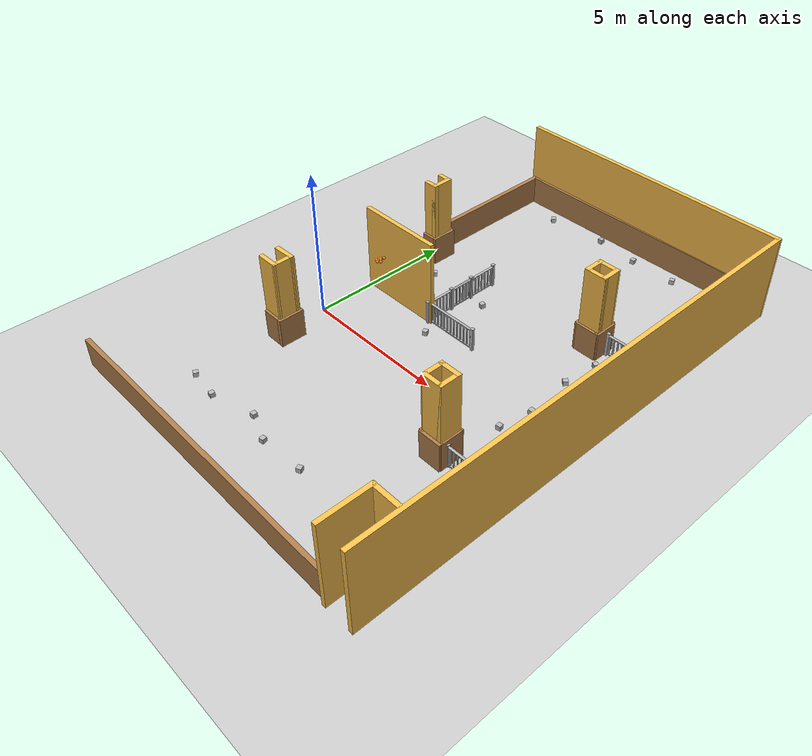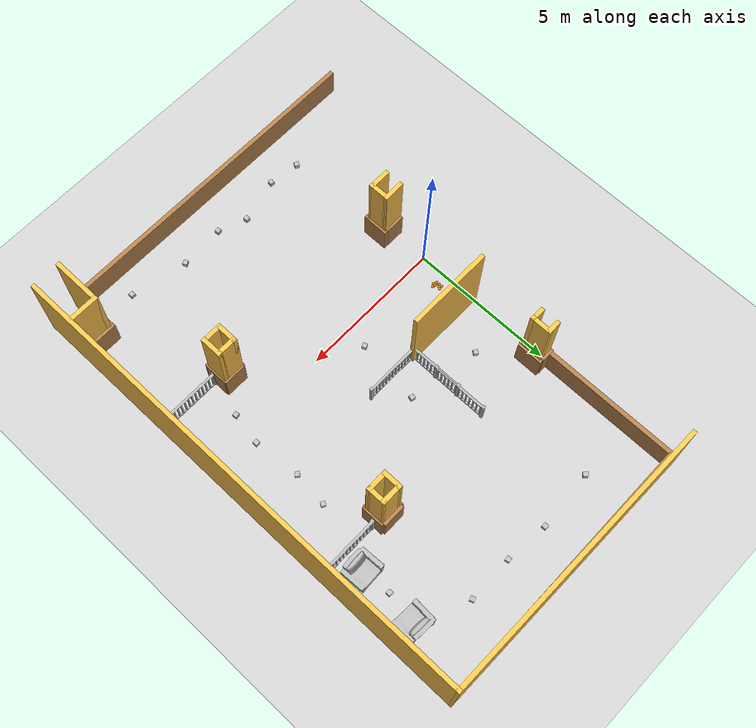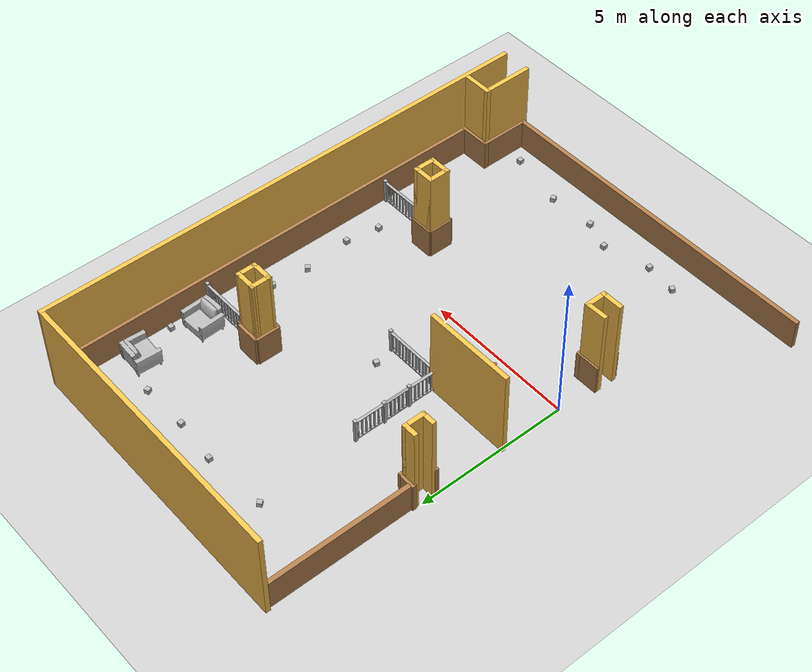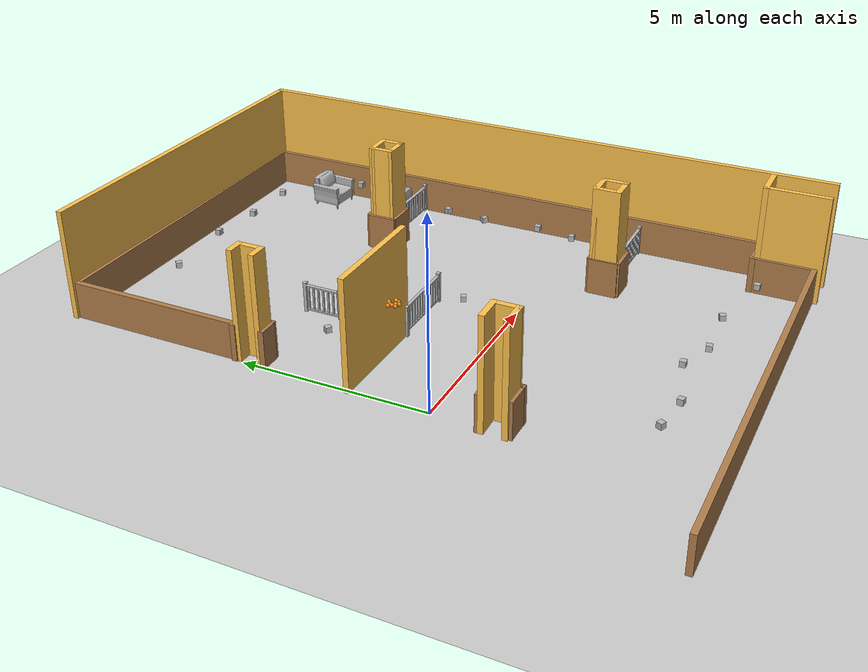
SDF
<sdf version="1.6">
 <world name="default">
  <model name="ground_plane">
   <static>1</static>
   <link name="link">
    <collision name="collision">
     <geometry><plane><normal>0 0 1</normal><size>100 100</size></plane></geometry>
     <surface><friction><ode><mu>100</mu><mu2>50</mu2></ode></friction></surface>
    </collision>
    <visual name="visual">
     <cast_shadows>0</cast_shadows>
     <geometry><plane><normal>0 0 1</normal><size>100 100</size></plane></geometry>
     <material>
      <script><uri>file://media/materials/scripts/gazebo.material</uri><name>Gazebo/Grey</name></script>
     </material>
    </visual>
   </link>
  </model>
  <model name="costa-gv">
   <pose>-2.49048 1.64389 0 0 -0 0</pose>
   <link name="Wall_175">
    <collision name="Wall_175_Collision">
     <geometry><box><size>11.5 0.15 1</size></box></geometry>
     <pose>0 0 0.5 0 -0 0</pose>
    </collision>
    <visual name="Wall_175_Visual">
     <pose>0 0 0.5 0 -0 0</pose>
     <geometry><box><size>11.5 0.15 1</size></box></geometry>
     <material>
      <script><uri>file://media/materials/scripts/gazebo.material</uri><name>Gazebo/Wood</name></script>
      <ambient>1 1 1 1</ambient>
     </material>
     <meta><layer>0</layer></meta>
    </visual>
    <pose>5.58313 -8.36284 0 0 -0 0</pose>
   </link>
   <link name="Wall_177">
    <collision name="Wall_177_Collision">
     <geometry><box><size>1.6 0.15 1</size></box></geometry>
     <pose>0 0 0.5 0 -0 0</pose>
    </collision>
    <visual name="Wall_177_Visual">
     <pose>0 0 0.5 0 -0 0</pose>
     <geometry><box><size>1.6 0.15 1</size></box></geometry>
     <material>
      <script><uri>file://media/materials/scripts/gazebo.material</uri><name>Gazebo/Wood</name></script>
      <ambient>1 1 1 1</ambient>
     </material>
     <meta><layer>0</layer></meta>
    </visual>
    <pose>11.2848 -7.54313 0 0 -0 -1.5708</pose>
   </link>
   <link name="Wall_179">
    <collision name="Wall_179_Collision">
     <geometry><box><size>1.15 0.15 1</size></box></geometry>
     <pose>0 0 0.5 0 -0 0</pose>
    </collision>
    <visual name="Wall_179_Visual">
     <pose>0 0 0.5 0 -0 0</pose>
     <geometry><box><size>1.15 0.15 1</size></box></geometry>
     <material>
      <script><uri>file://media/materials/scripts/gazebo.material</uri><name>Gazebo/Wood</name></script>
      <ambient>1 1 1 1</ambient>
     </material>
     <meta><layer>0</layer></meta>
    </visual>
    <pose>11.7805 -6.77121 0 0 -0 3.14159</pose>
   </link>
   <link name="Wall_181">
    <collision name="Wall_181_Collision">
     <geometry><box><size>0.75 0.15 1</size></box></geometry>
     <pose>0 0 0.5 0 -0 0</pose>
    </collision>
    <visual name="Wall_181_Visual">
     <pose>0 0 0.5 0 -0 0</pose>
     <geometry><box><size>0.75 0.15 1</size></box></geometry>
     <material>
      <script><uri>file://media/materials/scripts/gazebo.material</uri><name>Gazebo/Wood</name></script>
      <ambient>1 1 1 1</ambient>
     </material>
     <meta><layer>0</layer></meta>
    </visual>
    <pose>2.70847 -3.64523 0 0 -0 0</pose>
   </link>
   <link name="Wall_183">
    <collision name="Wall_183_Collision">
     <geometry><box><size>0.9 0.15 1</size></box></geometry>
     <pose>0 0 0.5 0 -0 0</pose>
    </collision>
    <visual name="Wall_183_Visual">
     <pose>0 0 0.5 0 -0 0</pose>
     <geometry><box><size>0.9 0.15 1</size></box></geometry>
     <material>
      <script><uri>file://media/materials/scripts/gazebo.material</uri><name>Gazebo/Wood</name></script>
      <ambient>1 1 1 1</ambient>
     </material>
     <meta><layer>0</layer></meta>
    </visual>
    <pose>3.03515 -3.27436 0 0 -0 -1.5708</pose>
   </link>
   <link name="Wall_185">
    <collision name="Wall_185_Collision">
     <geometry><box><size>0.75 0.15 1</size></box></geometry>
     <pose>0 0 0.5 0 -0 0</pose>
    </collision>
    <visual name="Wall_185_Visual">
     <pose>0 0 0.5 0 -0 0</pose>
     <geometry><box><size>0.75 0.15 1</size></box></geometry>
     <material>
      <script><uri>file://media/materials/scripts/gazebo.material</uri><name>Gazebo/Wood</name></script>
      <ambient>1 1 1 1</ambient>
     </material>
     <meta><layer>0</layer></meta>
    </visual>
    <pose>2.65506 -2.89971 0 0 -0 0</pose>
   </link>
   <link name="Wall_187">
    <collision name="Wall_187_Collision">
     <geometry><box><size>0.8 0.15 1</size></box></geometry>
     <pose>0 0 0.5 0 -0 0</pose>
    </collision>
    <visual name="Wall_187_Visual">
     <pose>0 0 0.5 0 -0 0</pose>
     <geometry><box><size>0.8 0.15 1</size></box></geometry>
     <material>
      <script><uri>file://media/materials/scripts/gazebo.material</uri><name>Gazebo/Wood</name></script>
      <ambient>1 1 1 1</ambient>
     </material>
     <meta><layer>0</layer></meta>
    </visual>
    <pose>10.133 -3.27767 0 0 -0 -1.5708</pose>
   </link>
   <link name="Wall_189">
    <collision name="Wall_189_Collision">
     <geometry><box><size>0.8 0.15 1</size></box></geometry>
     <pose>0 0 0.5 0 -0 0</pose>
    </collision>
    <visual name="Wall_189_Visual">
     <pose>0 0 0.5 0 -0 0</pose>
     <geometry><box><size>0.8 0.15 1</size></box></geometry>
     <material>
      <script><uri>file://media/materials/scripts/gazebo.material</uri><name>Gazebo/Wood</name></script>
      <ambient>1 1 1 1</ambient>
     </material>
     <meta><layer>0</layer></meta>
    </visual>
    <pose>9.42716 -3.27767 0 0 -0 -1.5708</pose>
   </link>
   <link name="Wall_191">
    <collision name="Wall_191_Collision">
     <geometry><box><size>0.8 0.15 1</size></box></geometry>
     <pose>0 0 0.5 0 -0 0</pose>
    </collision>
    <visual name="Wall_191_Visual">
     <pose>0 0 0.5 0 -0 0</pose>
     <geometry><box><size>0.8 0.15 1</size></box></geometry>
     <material>
      <script><uri>file://media/materials/scripts/gazebo.material</uri><name>Gazebo/Wood</name></script>
      <ambient>1 1 1 1</ambient>
     </material>
     <meta><layer>0</layer></meta>
    </visual>
    <pose>9.79211 -2.8994 0 0 -0 0</pose>
   </link>
   <link name="Wall_193">
    <collision name="Wall_193_Collision">
     <geometry><box><size>0.8 0.15 1</size></box></geometry>
     <pose>0 0 0.5 0 -0 0</pose>
    </collision>
    <visual name="Wall_193_Visual">
     <pose>0 0 0.5 0 -0 0</pose>
     <geometry><box><size>0.8 0.15 1</size></box></geometry>
     <material>
      <script><uri>file://media/materials/scripts/gazebo.material</uri><name>Gazebo/Wood</name></script>
      <ambient>1 1 1 1</ambient>
     </material>
     <meta><layer>0</layer></meta>
    </visual>
    <pose>9.79211 -3.6585 0 0 -0 0</pose>
   </link>
   <link name="Wall_199">
    <collision name="Wall_199_Collision">
     <geometry><box><size>0.9 0.15 1</size></box></geometry>
     <pose>0 0 0.5 0 -0 0</pose>
    </collision>
    <visual name="Wall_199_Visual">
     <pose>0 0 0.5 0 -0 0</pose>
     <geometry><box><size>0.9 0.15 1</size></box></geometry>
     <material>
      <script><uri>file://media/materials/scripts/gazebo.material</uri><name>Gazebo/Wood</name></script>
      <ambient>1 1 1 1</ambient>
     </material>
     <meta><layer>0</layer></meta>
    </visual>
    <pose>3.02615 3.21247 0 0 -0 -1.5708</pose>
   </link>
   <link name="Wall_201">
    <collision name="Wall_201_Collision">
     <geometry><box><size>0.5 0.15 1</size></box></geometry>
     <pose>0 0 0.5 0 -0 0</pose>
    </collision>
    <visual name="Wall_201_Visual">
     <pose>0 0 0.5 0 -0 0</pose>
     <geometry><box><size>0.5 0.15 1</size></box></geometry>
     <material>
      <script><uri>file://media/materials/scripts/gazebo.material</uri><name>Gazebo/Wood</name></script>
      <ambient>1 1 1 1</ambient>
     </material>
     <meta><layer>0</layer></meta>
    </visual>
    <pose>2.75815 2.81964 0 0 -0 3.14159</pose>
   </link>
   <link name="Wall_203">
    <collision name="Wall_203_Collision">
     <geometry><box><size>0.5 0.15 1</size></box></geometry>
     <pose>0 0 0.5 0 -0 0</pose>
    </collision>
    <visual name="Wall_203_Visual">
     <pose>0 0 0.5 0 -0 0</pose>
     <geometry><box><size>0.5 0.15 1</size></box></geometry>
     <material>
      <script><uri>file://media/materials/scripts/gazebo.material</uri><name>Gazebo/Wood</name></script>
      <ambient>1 1 1 1</ambient>
     </material>
     <meta><layer>0</layer></meta>
    </visual>
    <pose>2.73412 3.61144 0 0 -0 3.14159</pose>
   </link>
   <link name="Wall_205">
    <collision name="Wall_205_Collision">
     <geometry><box><size>4.75 0.15 1</size></box></geometry>
     <pose>0 0 0.5 0 -0 0</pose>
    </collision>
    <visual name="Wall_205_Visual">
     <pose>0 0 0.5 0 -0 0</pose>
     <geometry><box><size>4.75 0.15 1</size></box></geometry>
     <material>
      <script><uri>file://media/materials/scripts/gazebo.material</uri><name>Gazebo/Wood</name></script>
      <ambient>1 1 1 1</ambient>
     </material>
     <meta><layer>0</layer></meta>
    </visual>
    <pose>2.60715 6.03935 0 0 -0 -1.5708</pose>
   </link>
   <link name="Wall_207">
    <collision name="Wall_207_Collision">
     <geometry><box><size>0.8 0.15 1</size></box></geometry>
     <pose>0 0 0.5 0 -0 0</pose>
    </collision>
    <visual name="Wall_207_Visual">
     <pose>0 0 0.5 0 -0 0</pose>
     <geometry><box><size>0.8 0.15 1</size></box></geometry>
     <material>
      <script><uri>file://media/materials/scripts/gazebo.material</uri><name>Gazebo/Wood</name></script>
      <ambient>1 1 1 1</ambient>
     </material>
     <meta><layer>0</layer></meta>
    </visual>
    <pose>9.6862 3.63471 0 0 -0 0</pose>
   </link>
   <link name="Wall_209">
    <collision name="Wall_209_Collision">
     <geometry><box><size>0.8 0.15 1</size></box></geometry>
     <pose>0 0 0.5 0 -0 0</pose>
    </collision>
    <visual name="Wall_209_Visual">
     <pose>0 0 0.5 0 -0 0</pose>
     <geometry><box><size>0.8 0.15 1</size></box></geometry>
     <material>
      <script><uri>file://media/materials/scripts/gazebo.material</uri><name>Gazebo/Wood</name></script>
      <ambient>1 1 1 1</ambient>
     </material>
     <meta><layer>0</layer></meta>
    </visual>
    <pose>9.70978 2.88914 0 0 -0 0</pose>
   </link>
   <link name="Wall_211">
    <collision name="Wall_211_Collision">
     <geometry><box><size>0.8 0.15 1</size></box></geometry>
     <pose>0 0 0.5 0 -0 0</pose>
    </collision>
    <visual name="Wall_211_Visual">
     <pose>0 0 0.5 0 -0 0</pose>
     <geometry><box><size>0.8 0.15 1</size></box></geometry>
     <material>
      <script><uri>file://media/materials/scripts/gazebo.material</uri><name>Gazebo/Wood</name></script>
      <ambient>1 1 1 1</ambient>
     </material>
     <meta><layer>0</layer></meta>
    </visual>
    <pose>10.0836 3.23963 0 0 -0 -1.5708</pose>
   </link>
   <link name="Wall_213">
    <collision name="Wall_213_Collision">
     <geometry><box><size>0.8 0.15 1</size></box></geometry>
     <pose>0 0 0.5 0 -0 0</pose>
    </collision>
    <visual name="Wall_213_Visual">
     <pose>0 0 0.5 0 -0 0</pose>
     <geometry><box><size>0.8 0.15 1</size></box></geometry>
     <material>
      <script><uri>file://media/materials/scripts/gazebo.material</uri><name>Gazebo/Wood</name></script>
      <ambient>1 1 1 1</ambient>
     </material>
     <meta><layer>0</layer></meta>
    </visual>
    <pose>9.31515 3.23964 0 0 -0 -1.5708</pose>
   </link>
   <link name="Wall_215">
    <collision name="Wall_215_Collision">
     <geometry><box><size>9.5 0.15 1</size></box></geometry>
     <pose>0 0 0.5 0 -0 0</pose>
    </collision>
    <visual name="Wall_215_Visual">
     <pose>0 0 0.5 0 -0 0</pose>
     <geometry><box><size>9.5 0.15 1</size></box></geometry>
     <material>
      <script><uri>file://media/materials/scripts/gazebo.material</uri><name>Gazebo/Wood</name></script>
      <ambient>1 1 1 1</ambient>
     </material>
     <meta><layer>0</layer></meta>
    </visual>
    <pose>7.37515 8.36264 0 0 -0 0</pose>
   </link>
   <link name="Wall_217">
    <collision name="Wall_217_Collision">
     <geometry><box><size>15.25 0.15 1</size></box></geometry>
     <pose>0 0 0.5 0 -0 0</pose>
    </collision>
    <visual name="Wall_217_Visual">
     <pose>0 0 0.5 0 -0 0</pose>
     <geometry><box><size>15.25 0.15 1</size></box></geometry>
     <material>
      <script><uri>file://media/materials/scripts/gazebo.material</uri><name>Gazebo/Wood</name></script>
      <ambient>1 1 1 1</ambient>
     </material>
     <meta><layer>0</layer></meta>
    </visual>
    <pose>12.2443 0.762065 0 0 -0 -1.5708</pose>
   </link>
   <link name="Wall_37">
    <collision name="Wall_37_Collision">
     <geometry><box><size>0.751 0.15 3</size></box></geometry>
     <pose>0 0 1.5 0 -0 0</pose>
    </collision>
    <visual name="Wall_37_Visual">
     <pose>0 0 1.5 0 -0 0</pose>
     <geometry><box><size>0.751 0.15 3</size></box></geometry>
     <material>
      <script><uri>file://media/materials/scripts/gazebo.material</uri><name>Gazebo/Grey</name></script>
      <ambient>1 0.764706 0.305882 1</ambient>
     </material>
     <meta><layer>0</layer></meta>
    </visual>
    <pose>2.6549 -2.96586 0 0 -0 0.028256</pose>
   </link>
   <link name="Wall_38">
    <collision name="Wall_38_Collision">
     <geometry><box><size>0.73251 0.15 3</size></box></geometry>
     <pose>0 0 1.5 0 -0 0</pose>
    </collision>
    <visual name="Wall_38_Visual">
     <pose>0 0 1.5 0 -0 0</pose>
     <geometry><box><size>0.73251 0.15 3</size></box></geometry>
     <material>
      <script><uri>file://media/materials/scripts/gazebo.material</uri><name>Gazebo/Grey</name></script>
      <ambient>1 0.764706 0.305882 1</ambient>
     </material>
     <meta><layer>0</layer></meta>
    </visual>
    <pose>2.9554 -3.26611 0 0 -0 -1.57164</pose>
   </link>
   <link name="Wall_39">
    <collision name="Wall_39_Collision">
     <geometry><box><size>0.75 0.15 3</size></box></geometry>
     <pose>0 0 1.5 0 -0 0</pose>
    </collision>
    <visual name="Wall_39_Visual">
     <pose>0 0 1.5 0 -0 0</pose>
     <geometry><box><size>0.75 0.15 3</size></box></geometry>
     <material>
      <script><uri>file://media/materials/scripts/gazebo.material</uri><name>Gazebo/Grey</name></script>
      <ambient>1 0.764706 0.305882 1</ambient>
     </material>
     <meta><layer>0</layer></meta>
    </visual>
    <pose>2.65515 -3.55736 0 0 -0 3.14159</pose>
   </link>
   <link name="Wall_42">
    <collision name="Wall_42_Collision">
     <geometry><box><size>0.75 0.15 3</size></box></geometry>
     <pose>0 0 1.5 0 -0 0</pose>
    </collision>
    <visual name="Wall_42_Visual">
     <pose>0 0 1.5 0 -0 0</pose>
     <geometry><box><size>0.75 0.15 3</size></box></geometry>
     <material>
      <script><uri>file://media/materials/scripts/gazebo.material</uri><name>Gazebo/Grey</name></script>
      <ambient>1 0.764706 0.305882 1</ambient>
     </material>
     <meta><layer>0</layer></meta>
    </visual>
    <pose>9.77815 -2.95836 0 0 -0 0</pose>
   </link>
   <link name="Wall_43">
    <collision name="Wall_43_Collision">
     <geometry><box><size>0.75 0.15 3</size></box></geometry>
     <pose>0 0 1.5 0 -0 0</pose>
    </collision>
    <visual name="Wall_43_Visual">
     <pose>0 0 1.5 0 -0 0</pose>
     <geometry><box><size>0.75 0.15 3</size></box></geometry>
     <material>
      <script><uri>file://media/materials/scripts/gazebo.material</uri><name>Gazebo/Grey</name></script>
      <ambient>1 0.764706 0.305882 1</ambient>
     </material>
     <meta><layer>0</layer></meta>
    </visual>
    <pose>10.0782 -3.25836 0 0 -0 -1.5708</pose>
   </link>
   <link name="Wall_44">
    <collision name="Wall_44_Collision">
     <geometry><box><size>0.749866 0.15 3</size></box></geometry>
     <pose>0 0 1.5 0 -0 0</pose>
    </collision>
    <visual name="Wall_44_Visual">
     <pose>0 0 1.5 0 -0 0</pose>
     <geometry><box><size>0.749866 0.15 3</size></box></geometry>
     <material>
      <script><uri>file://media/materials/scripts/gazebo.material</uri><name>Gazebo/Grey</name></script>
      <ambient>1 0.764706 0.305882 1</ambient>
     </material>
     <meta><layer>0</layer></meta>
    </visual>
    <pose>9.77815 -3.55836 0 0 -0 3.14159</pose>
   </link>
   <link name="Wall_45">
    <collision name="Wall_45_Collision">
     <geometry><box><size>0.75 0.15 3</size></box></geometry>
     <pose>0 0 1.5 0 -0 0</pose>
    </collision>
    <visual name="Wall_45_Visual">
     <pose>0 0 1.5 0 -0 0</pose>
     <geometry><box><size>0.75 0.15 3</size></box></geometry>
     <material>
      <script><uri>file://media/materials/scripts/gazebo.material</uri><name>Gazebo/Grey</name></script>
      <ambient>1 0.764706 0.305882 1</ambient>
     </material>
     <meta><layer>0</layer></meta>
    </visual>
    <pose>9.47815 -3.25836 0 0 -0 1.5708</pose>
   </link>
   <link name="Wall_47">
    <collision name="Wall_47_Collision">
     <geometry><box><size>0.5 0.15 3</size></box></geometry>
     <pose>0 0 1.5 0 -0 0</pose>
    </collision>
    <visual name="Wall_47_Visual">
     <pose>0 0 1.5 0 -0 0</pose>
     <geometry><box><size>0.5 0.15 3</size></box></geometry>
     <material>
      <script><uri>file://media/materials/scripts/gazebo.material</uri><name>Gazebo/Grey</name></script>
      <ambient>1 0.764706 0.305882 1</ambient>
     </material>
     <meta><layer>0</layer></meta>
    </visual>
    <pose>2.77015 3.51064 0 0 -0 0</pose>
   </link>
   <link name="Wall_48">
    <collision name="Wall_48_Collision">
     <geometry><box><size>0.75 0.15 3</size></box></geometry>
     <pose>0 0 1.5 0 -0 0</pose>
    </collision>
    <visual name="Wall_48_Visual">
     <pose>0 0 1.5 0 -0 0</pose>
     <geometry><box><size>0.75 0.15 3</size></box></geometry>
     <material>
      <script><uri>file://media/materials/scripts/gazebo.material</uri><name>Gazebo/Grey</name></script>
      <ambient>1 0.764706 0.305882 1</ambient>
     </material>
     <meta><layer>0</layer></meta>
    </visual>
    <pose>2.94515 3.21064 0 0 -0 -1.5708</pose>
   </link>
   <link name="Wall_49">
    <collision name="Wall_49_Collision">
     <geometry><box><size>0.5 0.15 3</size></box></geometry>
     <pose>0 0 1.5 0 -0 0</pose>
    </collision>
    <visual name="Wall_49_Visual">
     <pose>0 0 1.5 0 -0 0</pose>
     <geometry><box><size>0.5 0.15 3</size></box></geometry>
     <material>
      <script><uri>file://media/materials/scripts/gazebo.material</uri><name>Gazebo/Grey</name></script>
      <ambient>1 0.764706 0.305882 1</ambient>
     </material>
     <meta><layer>0</layer></meta>
    </visual>
    <pose>2.77015 2.91064 0 0 -0 3.14159</pose>
   </link>
   <link name="Wall_52">
    <collision name="Wall_52_Collision">
     <geometry><box><size>1.75 0.15 3</size></box></geometry>
     <pose>0 0 1.5 0 -0 0</pose>
    </collision>
    <visual name="Wall_52_Visual">
     <pose>0 0 1.5 0 -0 0</pose>
     <geometry><box><size>1.75 0.15 3</size></box></geometry>
     <material>
      <script><uri>file://media/materials/scripts/gazebo.material</uri><name>Gazebo/Grey</name></script>
      <ambient>1 0.764706 0.305882 1</ambient>
     </material>
     <meta><layer>0</layer></meta>
    </visual>
    <pose>11.3762 -7.67136 0 0 -0 -1.5708</pose>
   </link>
   <link name="Wall_54">
    <collision name="Wall_54_Collision">
     <geometry><box><size>1 0.15 3</size></box></geometry>
     <pose>0 0 1.5 0 -0 0</pose>
    </collision>
    <visual name="Wall_54_Visual">
     <pose>0 0 1.5 0 -0 0</pose>
     <geometry><box><size>1 0.15 3</size></box></geometry>
     <material>
      <script><uri>file://media/materials/scripts/gazebo.material</uri><name>Gazebo/Grey</name></script>
      <ambient>1 0.764706 0.305882 1</ambient>
     </material>
     <meta><layer>0</layer></meta>
    </visual>
    <pose>11.8012 -6.87136 0 0 -0 0</pose>
   </link>
   <link name="Wall_80">
    <collision name="Wall_80_Collision">
     <geometry><box><size>17 0.15 3</size></box></geometry>
     <pose>0 0 1.5 0 -0 0</pose>
    </collision>
    <visual name="Wall_80_Visual">
     <pose>0 0 1.5 0 -0 0</pose>
     <geometry><box><size>17 0.15 3</size></box></geometry>
     <material>
      <script><uri>file://media/materials/scripts/gazebo.material</uri><name>Gazebo/Grey</name></script>
      <ambient>1 0.764706 0.305882 1</ambient>
     </material>
     <meta><layer>0</layer></meta>
    </visual>
    <pose>12.3602 -0.034362 0 0 -0 1.5708</pose>
   </link>
   <link name="Wall_81">
    <collision name="Wall_81_Collision">
     <geometry><box><size>9.97469 0.15 3</size></box></geometry>
     <pose>0 0 1.5 0 -0 0</pose>
    </collision>
    <visual name="Wall_81_Visual">
     <pose>0 0 1.5 0 -0 0</pose>
     <geometry><box><size>9.97469 0.15 3</size></box></geometry>
     <material>
      <script><uri>file://media/materials/scripts/gazebo.material</uri><name>Gazebo/Grey</name></script>
      <ambient>1 0.764706 0.305882 1</ambient>
     </material>
     <meta><layer>0</layer></meta>
    </visual>
    <pose>7.44815 8.43064 0 0 -0 3.13345</pose>
   </link>
   <link name="Wall_83">
    <collision name="Wall_83_Collision">
     <geometry><box><size>0.767 0.15 3</size></box></geometry>
     <pose>0 0 1.5 0 -0 0</pose>
    </collision>
    <visual name="Wall_83_Visual">
     <pose>0 0 1.5 0 -0 0</pose>
     <geometry><box><size>0.767 0.15 3</size></box></geometry>
     <material>
      <script><uri>file://media/materials/scripts/gazebo.material</uri><name>Gazebo/Grey</name></script>
      <ambient>1 0.764706 0.305882 1</ambient>
     </material>
     <meta><layer>0</layer></meta>
    </visual>
    <pose>9.70765 3.52564 0 0 -0 0</pose>
   </link>
   <link name="Wall_84">
    <collision name="Wall_84_Collision">
     <geometry><box><size>0.680042 0.15 3</size></box></geometry>
     <pose>0 0 1.5 0 -0 0</pose>
    </collision>
    <visual name="Wall_84_Visual">
     <pose>0 0 1.5 0 -0 0</pose>
     <geometry><box><size>0.680042 0.15 3</size></box></geometry>
     <material>
      <script><uri>file://media/materials/scripts/gazebo.material</uri><name>Gazebo/Grey</name></script>
      <ambient>1 0.764706 0.305882 1</ambient>
     </material>
     <meta><layer>0</layer></meta>
    </visual>
    <pose>10.0169 3.26062 0 0 -0 -1.56798</pose>
   </link>
   <link name="Wall_85">
    <collision name="Wall_85_Collision">
     <geometry><box><size>0.768 0.15 3</size></box></geometry>
     <pose>0 0 1.5 0 -0 0</pose>
    </collision>
    <visual name="Wall_85_Visual">
     <pose>0 0 1.5 0 -0 0</pose>
     <geometry><box><size>0.768 0.15 3</size></box></geometry>
     <material>
      <script><uri>file://media/materials/scripts/gazebo.material</uri><name>Gazebo/Grey</name></script>
      <ambient>1 0.764706 0.305882 1</ambient>
     </material>
     <meta><layer>0</layer></meta>
    </visual>
    <pose>9.70864 2.97811 0 0 -0 3.14159</pose>
   </link>
   <link name="Wall_86">
    <collision name="Wall_86_Collision">
     <geometry><box><size>0.68004 0.15 3</size></box></geometry>
     <pose>0 0 1.5 0 -0 0</pose>
    </collision>
    <visual name="Wall_86_Visual">
     <pose>0 0 1.5 0 -0 0</pose>
     <geometry><box><size>0.68004 0.15 3</size></box></geometry>
     <material>
      <script><uri>file://media/materials/scripts/gazebo.material</uri><name>Gazebo/Grey</name></script>
      <ambient>1 0.764706 0.305882 1</ambient>
     </material>
     <meta><layer>0</layer></meta>
    </visual>
    <pose>9.3994 3.26062 0 0 -0 1.57172</pose>
   </link>
   <link name="Wall_98">
    <collision name="Wall_98_Collision">
     <geometry><box><size>3 0.15 3</size></box></geometry>
     <pose>0 0 1.5 0 -0 0</pose>
    </collision>
    <visual name="Wall_98_Visual">
     <pose>0 0 1.5 0 -0 0</pose>
     <geometry><box><size>3 0.15 3</size></box></geometry>
     <material>
      <script><uri>file://media/materials/scripts/gazebo.material</uri><name>Gazebo/Grey</name></script>
      <ambient>1 0.764706 0.305882 1</ambient>
     </material>
     <meta><layer>0</layer></meta>
    </visual>
    <pose>3.91415 0.481638 0 0 -0 0</pose>
   </link>
   <static>1</static>
  </model>
  <model name="armchair_5">
   <static>1</static>
   <pose>8.64786 7.36606 0 0 -0 1.51589</pose>
   <link name="body">
    <inertial>
     <mass>5</mass>
     <inertia><ixx>1</ixx><ixy>0</ixy><iyy>1</iyy><ixz>0</ixz><iyz>0</iyz><izz>1</izz></inertia>
    </inertial>
    <collision name="collision">
     <geometry><mesh><uri>model://armchair/meshes/armchair.dae</uri><scale>1 1 1</scale></mesh></geometry>
    </collision>
    <visual name="visual">
     <geometry><mesh><uri>model://armchair/meshes/armchair.dae</uri><scale>1 1 1</scale></mesh></geometry>
    </visual>
   </link>
  </model>
  <model name="armchair_6">
   <static>1</static>
   <pose>9.20262 6.09839 0 0 0 -1.52818</pose>
   <link name="body">
    <inertial>
     <mass>5</mass>
     <inertia><ixx>1</ixx><ixy>0</ixy><iyy>1</iyy><ixz>0</ixz><iyz>0</iyz><izz>1</izz></inertia>
    </inertial>
    <collision name="collision">
     <geometry><mesh><uri>model://armchair/meshes/armchair.dae</uri><scale>1 1 1</scale></mesh></geometry>
    </collision>
    <visual name="visual">
     <geometry><mesh><uri>model://armchair/meshes/armchair.dae</uri><scale>1 1 1</scale></mesh></geometry>
    </visual>
   </link>
  </model>
  <model name="fence">
   <static>1</static>
   <pose>9.69718 5.00591 0 0 0 -3.14159</pose>
   <link name="body">
    <inertial>
     <mass>5</mass>
     <inertia><ixx>1</ixx><ixy>0</ixy><iyy>1</iyy><ixz>0</ixz><iyz>0</iyz><izz>1</izz></inertia>
    </inertial>
    <collision name="collision">
     <geometry><mesh><uri>model://fence/meshes/fence.dae</uri><scale>1 1 1</scale></mesh></geometry>
    </collision>
    <visual name="visual">
     <geometry><mesh><uri>model://fence/meshes/fence.dae</uri><scale>1 1 1</scale></mesh></geometry>
    </visual>
   </link>
  </model>
  <model name="fence_1">
   <static>1</static>
   <pose>4.80675 2.1565 0 0 0 -3.14159</pose>
   <link name="body">
    <inertial>
     <mass>5</mass>
     <inertia><ixx>1</ixx><ixy>0</ixy><iyy>1</iyy><ixz>0</ixz><iyz>0</iyz><izz>1</izz></inertia>
    </inertial>
    <collision name="collision">
     <geometry><mesh><uri>model://fence/meshes/fence.dae</uri><scale>1 1 1</scale></mesh></geometry>
    </collision>
    <visual name="visual">
     <geometry><mesh><uri>model://fence/meshes/fence.dae</uri><scale>1 1 1</scale></mesh></geometry>
    </visual>
   </link>
  </model>
  <model name="fence_2">
   <static>1</static>
   <pose>9.68479 -1.70843 0 0 0 -3.14159</pose>
   <link name="body">
    <inertial>
     <mass>5</mass>
     <inertia><ixx>1</ixx><ixy>0</ixy><iyy>1</iyy><ixz>0</ixz><iyz>0</iyz><izz>1</izz></inertia>
    </inertial>
    <collision name="collision">
     <geometry><mesh><uri>model://fence/meshes/fence.dae</uri><scale>1 1 1</scale></mesh></geometry>
    </collision>
    <visual name="visual">
     <geometry><mesh><uri>model://fence/meshes/fence.dae</uri><scale>1 1 1</scale></mesh></geometry>
    </visual>
   </link>
  </model>
  <model name="unit_sphere_clone">
   <static>1</static>
   <pose>1.21347 1.36317 1.88328 0 -0 0</pose>
   <link name="link">
    <inertial>
     <mass>1</mass>
     <inertia><ixx>0.1</ixx><ixy>0</ixy><ixz>0</ixz><iyy>0.1</iyy><iyz>0</iyz><izz>0.1</izz></inertia>
    </inertial>
    <collision name="collision"><geometry><sphere><radius>0.0486888</radius></sphere></geometry></collision>
    <visual name="visual">
     <geometry><sphere><radius>0.0486888</radius></sphere></geometry>
     <material>
      <script><name>Gazebo/Orange</name><uri>file://media/materials/scripts/gazebo.material</uri></script>
     </material>
    </visual>
   </link>
  </model>
  <model name="unit_sphere_clone_clone">
   <static>1</static>
   <pose>1.10572 1.4127 1.87393 0 -0 0</pose>
   <link name="link">
    <inertial>
     <mass>1</mass>
     <inertia><ixx>0.1</ixx><ixy>0</ixy><ixz>0</ixz><iyy>0.1</iyy><iyz>0</iyz><izz>0.1</izz></inertia>
    </inertial>
    <collision name="collision"><geometry><sphere><radius>0.0486888</radius></sphere></geometry></collision>
    <visual name="visual">
     <geometry><sphere><radius>0.0486888</radius></sphere></geometry>
     <material>
      <script><name>Gazebo/Orange</name><uri>file://media/materials/scripts/gazebo.material</uri></script>
     </material>
    </visual>
   </link>
  </model>
  <model name="unit_sphere_clone_clone_0">
   <static>1</static>
   <pose>1.1017 1.6057 1.85272 0 -0 0</pose>
   <link name="link">
    <inertial>
     <mass>1</mass>
     <inertia><ixx>0.1</ixx><ixy>0</ixy><ixz>0</ixz><iyy>0.1</iyy><iyz>0</iyz><izz>0.1</izz></inertia>
    </inertial>
    <collision name="collision"><geometry><sphere><radius>0.0486888</radius></sphere></geometry></collision>
    <visual name="visual">
     <geometry><sphere><radius>0.0486888</radius></sphere></geometry>
     <material>
      <script><name>Gazebo/Orange</name><uri>file://media/materials/scripts/gazebo.material</uri></script>
     </material>
    </visual>
   </link>
  </model>
  <model name="unit_sphere_clone_clone_1">
   <static>1</static>
   <pose>1.21544 1.63169 1.88908 0 -0 0</pose>
   <link name="link">
    <inertial>
     <mass>1</mass>
     <inertia><ixx>0.1</ixx><ixy>0</ixy><ixz>0</ixz><iyy>0.1</iyy><iyz>0</iyz><izz>0.1</izz></inertia>
    </inertial>
    <collision name="collision"><geometry><sphere><radius>0.0486888</radius></sphere></geometry></collision>
    <visual name="visual">
     <geometry><sphere><radius>0.0486888</radius></sphere></geometry>
     <material>
      <script><name>Gazebo/Orange</name><uri>file://media/materials/scripts/gazebo.material</uri></script>
     </material>
    </visual>
   </link>
  </model>
  <model name="unit_sphere_clone_clone_2">
   <static>1</static>
   <pose>1.18385 1.44315 1.88563 0 -0 0</pose>
   <link name="link">
    <inertial>
     <mass>1</mass>
     <inertia><ixx>0.1</ixx><ixy>0</ixy><ixz>0</ixz><iyy>0.1</iyy><iyz>0</iyz><izz>0.1</izz></inertia>
    </inertial>
    <collision name="collision"><geometry><sphere><radius>0.0486888</radius></sphere></geometry></collision>
    <visual name="visual">
     <geometry><sphere><radius>0.0486888</radius></sphere></geometry>
     <material>
      <script><name>Gazebo/Orange</name><uri>file://media/materials/scripts/gazebo.material</uri></script>
     </material>
    </visual>
   </link>
  </model>
  <model name="unit_sphere_clone_clone_3">
   <static>1</static>
   <pose>1.30081 1.42515 1.89321 0 -0 0</pose>
   <link name="link">
    <inertial>
     <mass>1</mass>
     <inertia><ixx>0.1</ixx><ixy>0</ixy><ixz>0</ixz><iyy>0.1</iyy><iyz>0</iyz><izz>0.1</izz></inertia>
    </inertial>
    <collision name="collision"><geometry><sphere><radius>0.0486888</radius></sphere></geometry></collision>
    <visual name="visual">
     <geometry><sphere><radius>0.0486888</radius></sphere></geometry>
     <material>
      <script><name>Gazebo/Orange</name><uri>file://media/materials/scripts/gazebo.material</uri></script>
     </material>
    </visual>
   </link>
  </model>
  <model name="unit_sphere_clone_clone_4">
   <static>1</static>
   <pose>1.24979 1.46185 1.95213 0 -0 0</pose>
   <link name="link">
    <inertial>
     <mass>1</mass>
     <inertia><ixx>0.1</ixx><ixy>0</ixy><ixz>0</ixz><iyy>0.1</iyy><iyz>0</iyz><izz>0.1</izz></inertia>
    </inertial>
    <collision name="collision"><geometry><sphere><radius>0.0486888</radius></sphere></geometry></collision>
    <visual name="visual">
     <geometry><sphere><radius>0.0486888</radius></sphere></geometry>
     <material>
      <script><name>Gazebo/Orange</name><uri>file://media/materials/scripts/gazebo.material</uri></script>
     </material>
    </visual>
   </link>
  </model>
  <model name="unit_sphere_clone_clone_5">
   <static>1</static>
   <pose>1.11128 1.50519 1.88395 0 -0 0</pose>
   <link name="link">
    <inertial>
     <mass>1</mass>
     <inertia><ixx>0.1</ixx><ixy>0</ixy><ixz>0</ixz><iyy>0.1</iyy><iyz>0</iyz><izz>0.1</izz></inertia>
    </inertial>
    <collision name="collision"><geometry><sphere><radius>0.0486888</radius></sphere></geometry></collision>
    <visual name="visual">
     <geometry><sphere><radius>0.0486888</radius></sphere></geometry>
     <material>
      <script><name>Gazebo/Orange</name><uri>file://media/materials/scripts/gazebo.material</uri></script>
     </material>
    </visual>
   </link>
  </model>
  <model name="unit_sphere_clone_clone_6">
   <static>1</static>
   <pose>1.16525 1.57326 1.86136 0 -0 0</pose>
   <link name="link">
    <inertial>
     <mass>1</mass>
     <inertia><ixx>0.1</ixx><ixy>0</ixy><ixz>0</ixz><iyy>0.1</iyy><iyz>0</iyz><izz>0.1</izz></inertia>
    </inertial>
    <collision name="collision"><geometry><sphere><radius>0.0486888</radius></sphere></geometry></collision>
    <visual name="visual">
     <geometry><sphere><radius>0.0486888</radius></sphere></geometry>
     <material>
      <script><name>Gazebo/Orange</name><uri>file://media/materials/scripts/gazebo.material</uri></script>
     </material>
    </visual>
   </link>
  </model>
  <model name="fence_3">
   <static>1</static>
   <pose>2.86827 1.96178 0 0 -0 1.5708</pose>
   <link name="body">
    <inertial>
     <mass>5</mass>
     <inertia><ixx>1</ixx><ixy>0</ixy><iyy>1</iyy><ixz>0</ixz><iyz>0</iyz><izz>1</izz></inertia>
    </inertial>
    <collision name="collision">
     <geometry><mesh><uri>model://fence/meshes/fence.dae</uri><scale>1 1 1</scale></mesh></geometry>
    </collision>
    <visual name="visual">
     <geometry><mesh><uri>model://fence/meshes/fence.dae</uri><scale>1 1 1</scale></mesh></geometry>
    </visual>
   </link>
  </model>
  <model name="fence_0">
   <static>1</static>
   <pose>2.7693 5.03663 0 0 0 -1.5708</pose>
   <link name="body">
    <inertial>
     <mass>5</mass>
     <inertia><ixx>1</ixx><ixy>0</ixy><iyy>1</iyy><ixz>0</ixz><iyz>0</iyz><izz>1</izz></inertia>
    </inertial>
    <collision name="collision">
     <geometry><mesh><uri>model://fence/meshes/fence.dae</uri><scale>1 1 1</scale></mesh></geometry>
    </collision>
    <visual name="visual">
     <geometry><mesh><uri>model://fence/meshes/fence.dae</uri><scale>1 1 1</scale></mesh></geometry>
    </visual>
   </link>
  </model>
  <model name="box_4">
   <static>1</static>
   <pose>5.65363 -5.22925 0.736328 0 -0 0.436472</pose>
   <link name="body">
    <inertial>
     <mass>5</mass>
     <inertia><ixx>1</ixx><ixy>0</ixy><iyy>1</iyy><ixz>0</ixz><iyz>0</iyz><izz>1</izz></inertia>
    </inertial>
    <collision name="collision">
     <geometry><mesh><uri>model://box/meshes/box.dae</uri><scale>1 1 1</scale></mesh></geometry>
    </collision>
    <visual name="visual">
     <geometry><mesh><uri>model://box/meshes/box.dae</uri><scale>1 1 1</scale></mesh></geometry>
    </visual>
   </link>
  </model>
  <model name="box_5">
   <static>1</static>
   <pose>4.11019 -5.29608 0.731179 0 -0 0.161581</pose>
   <link name="body">
    <inertial>
     <mass>5</mass>
     <inertia><ixx>1</ixx><ixy>0</ixy><iyy>1</iyy><ixz>0</ixz><iyz>0</iyz><izz>1</izz></inertia>
    </inertial>
    <collision name="collision">
     <geometry><mesh><uri>model://box/meshes/box.dae</uri><scale>1 1 1</scale></mesh></geometry>
    </collision>
    <visual name="visual">
     <geometry><mesh><uri>model://box/meshes/box.dae</uri><scale>1 1 1</scale></mesh></geometry>
    </visual>
   </link>
  </model>
  <model name="box_6">
   <static>1</static>
   <pose>3.15425 -4.92776 0.742861 0 -0 0</pose>
   <link name="body">
    <inertial>
     <mass>5</mass>
     <inertia><ixx>1</ixx><ixy>0</ixy><iyy>1</iyy><ixz>0</ixz><iyz>0</iyz><izz>1</izz></inertia>
    </inertial>
    <collision name="collision">
     <geometry><mesh><uri>model://box/meshes/box.dae</uri><scale>1 1 1</scale></mesh></geometry>
    </collision>
    <visual name="visual">
     <geometry><mesh><uri>model://box/meshes/box.dae</uri><scale>1 1 1</scale></mesh></geometry>
    </visual>
   </link>
  </model>
  <model name="box_7">
   <static>1</static>
   <pose>1.64518 -5.30645 0.735982 0 0 -0.134782</pose>
   <link name="body">
    <inertial>
     <mass>5</mass>
     <inertia><ixx>1</ixx><ixy>0</ixy><iyy>1</iyy><ixz>0</ixz><iyz>0</iyz><izz>1</izz></inertia>
    </inertial>
    <collision name="collision">
     <geometry><mesh><uri>model://box/meshes/box.dae</uri><scale>1 1 1</scale></mesh></geometry>
    </collision>
    <visual name="visual">
     <geometry><mesh><uri>model://box/meshes/box.dae</uri><scale>1 1 1</scale></mesh></geometry>
    </visual>
   </link>
  </model>
  <model name="box_8">
   <static>1</static>
   <pose>0.57989 -5.13902 0.737752 0 0 -0.462524</pose>
   <link name="body">
    <inertial>
     <mass>5</mass>
     <inertia><ixx>1</ixx><ixy>0</ixy><iyy>1</iyy><ixz>0</ixz><iyz>0</iyz><izz>1</izz></inertia>
    </inertial>
    <collision name="collision">
     <geometry><mesh><uri>model://box/meshes/box.dae</uri><scale>1 1 1</scale></mesh></geometry>
    </collision>
    <visual name="visual">
     <geometry><mesh><uri>model://box/meshes/box.dae</uri><scale>1 1 1</scale></mesh></geometry>
    </visual>
   </link>
  </model>
  <model name="box_9">
   <static>1</static>
   <pose>7.5341 -5.61121 0.730347 0 -0 0</pose>
   <link name="body">
    <inertial>
     <mass>5</mass>
     <inertia><ixx>1</ixx><ixy>0</ixy><iyy>1</iyy><ixz>0</ixz><iyz>0</iyz><izz>1</izz></inertia>
    </inertial>
    <collision name="collision">
     <geometry><mesh><uri>model://box/meshes/box.dae</uri><scale>1 1 1</scale></mesh></geometry>
    </collision>
    <visual name="visual">
     <geometry><mesh><uri>model://box/meshes/box.dae</uri><scale>1 1 1</scale></mesh></geometry>
    </visual>
   </link>
  </model>
  <model name="box_10">
   <static>1</static>
   <pose>8.10213 -0.374355 0.750607 0 -0 0.147028</pose>
   <link name="body">
    <inertial>
     <mass>5</mass>
     <inertia><ixx>1</ixx><ixy>0</ixy><iyy>1</iyy><ixz>0</ixz><iyz>0</iyz><izz>1</izz></inertia>
    </inertial>
    <collision name="collision">
     <geometry><mesh><uri>model://box/meshes/box.dae</uri><scale>1 1 1</scale></mesh></geometry>
    </collision>
    <visual name="visual">
     <geometry><mesh><uri>model://box/meshes/box.dae</uri><scale>1 1 1</scale></mesh></geometry>
    </visual>
   </link>
  </model>
  <model name="box_11">
   <static>1</static>
   <pose>8.28432 0.709729 0.744929 0 -0 0</pose>
   <link name="body">
    <inertial>
     <mass>5</mass>
     <inertia><ixx>1</ixx><ixy>0</ixy><iyy>1</iyy><ixz>0</ixz><iyz>0</iyz><izz>1</izz></inertia>
    </inertial>
    <collision name="collision">
     <geometry><mesh><uri>model://box/meshes/box.dae</uri><scale>1 1 1</scale></mesh></geometry>
    </collision>
    <visual name="visual">
     <geometry><mesh><uri>model://box/meshes/box.dae</uri><scale>1 1 1</scale></mesh></geometry>
    </visual>
   </link>
  </model>
  <model name="box_12">
   <static>1</static>
   <pose>8.22687 2.25517 0.745479 0 -0 0.882976</pose>
   <link name="body">
    <inertial>
     <mass>5</mass>
     <inertia><ixx>1</ixx><ixy>0</ixy><iyy>1</iyy><ixz>0</ixz><iyz>0</iyz><izz>1</izz></inertia>
    </inertial>
    <collision name="collision">
     <geometry><mesh><uri>model://box/meshes/box.dae</uri><scale>1 1 1</scale></mesh></geometry>
    </collision>
    <visual name="visual">
     <geometry><mesh><uri>model://box/meshes/box.dae</uri><scale>1 1 1</scale></mesh></geometry>
    </visual>
   </link>
  </model>
  <model name="box_13">
   <static>1</static>
   <pose>8.23745 3.51758 0.73907 0 0 -0.479408</pose>
   <link name="body">
    <inertial>
     <mass>5</mass>
     <inertia><ixx>1</ixx><ixy>0</ixy><iyy>1</iyy><ixz>0</ixz><iyz>0</iyz><izz>1</izz></inertia>
    </inertial>
    <collision name="collision">
     <geometry><mesh><uri>model://box/meshes/box.dae</uri><scale>1 1 1</scale></mesh></geometry>
    </collision>
    <visual name="visual">
     <geometry><mesh><uri>model://box/meshes/box.dae</uri><scale>1 1 1</scale></mesh></geometry>
    </visual>
   </link>
  </model>
  <model name="box_14">
   <static>1</static>
   <pose>8.82555 6.65912 0.727034 0 -0 0</pose>
   <link name="body">
    <inertial>
     <mass>5</mass>
     <inertia><ixx>1</ixx><ixy>0</ixy><iyy>1</iyy><ixz>0</ixz><iyz>0</iyz><izz>1</izz></inertia>
    </inertial>
    <collision name="collision">
     <geometry><mesh><uri>model://box/meshes/box.dae</uri><scale>1 1 1</scale></mesh></geometry>
    </collision>
    <visual name="visual">
     <geometry><mesh><uri>model://box/meshes/box.dae</uri><scale>1 1 1</scale></mesh></geometry>
    </visual>
   </link>
  </model>
  <model name="box_15">
   <static>1</static>
   <pose>2.43715 8.54442 0.712501 0 -0 2.31526</pose>
   <link name="body">
    <inertial>
     <mass>5</mass>
     <inertia><ixx>1</ixx><ixy>0</ixy><iyy>1</iyy><ixz>0</ixz><iyz>0</iyz><izz>1</izz></inertia>
    </inertial>
    <collision name="collision">
     <geometry><mesh><uri>model://box/meshes/box.dae</uri><scale>1 1 1</scale></mesh></geometry>
    </collision>
    <visual name="visual">
     <geometry><mesh><uri>model://box/meshes/box.dae</uri><scale>1 1 1</scale></mesh></geometry>
    </visual>
   </link>
  </model>
  <model name="box_16">
   <static>1</static>
   <pose>4.28426 8.62195 0.745482 0 -0 0</pose>
   <link name="body">
    <inertial>
     <mass>5</mass>
     <inertia><ixx>1</ixx><ixy>0</ixy><iyy>1</iyy><ixz>0</ixz><iyz>0</iyz><izz>1</izz></inertia>
    </inertial>
    <collision name="collision">
     <geometry><mesh><uri>model://box/meshes/box.dae</uri><scale>1 1 1</scale></mesh></geometry>
    </collision>
    <visual name="visual">
     <geometry><mesh><uri>model://box/meshes/box.dae</uri><scale>1 1 1</scale></mesh></geometry>
    </visual>
   </link>
  </model>
  <model name="box_17">
   <static>1</static>
   <pose>5.76854 8.47081 0.725085 0 -0 0.135666</pose>
   <link name="body">
    <inertial>
     <mass>5</mass>
     <inertia><ixx>1</ixx><ixy>0</ixy><iyy>1</iyy><ixz>0</ixz><iyz>0</iyz><izz>1</izz></inertia>
    </inertial>
    <collision name="collision">
     <geometry><mesh><uri>model://box/meshes/box.dae</uri><scale>1 1 1</scale></mesh></geometry>
    </collision>
    <visual name="visual">
     <geometry><mesh><uri>model://box/meshes/box.dae</uri><scale>1 1 1</scale></mesh></geometry>
    </visual>
   </link>
  </model>
  <model name="box_18">
   <static>1</static>
   <pose>7.35752 8.46847 0.719962 0 -0 0.377772</pose>
   <link name="body">
    <inertial>
     <mass>5</mass>
     <inertia><ixx>1</ixx><ixy>0</ixy><iyy>1</iyy><ixz>0</ixz><iyz>0</iyz><izz>1</izz></inertia>
    </inertial>
    <collision name="collision">
     <geometry><mesh><uri>model://box/meshes/box.dae</uri><scale>1 1 1</scale></mesh></geometry>
    </collision>
    <visual name="visual">
     <geometry><mesh><uri>model://box/meshes/box.dae</uri><scale>1 1 1</scale></mesh></geometry>
    </visual>
   </link>
  </model>
  <model name="box_19">
   <static>1</static>
   <pose>3.98629 3.12503 0.730714 0 0 -0.270126</pose>
   <link name="body">
    <inertial>
     <mass>5</mass>
     <inertia><ixx>1</ixx><ixy>0</ixy><iyy>1</iyy><ixz>0</ixz><iyz>0</iyz><izz>1</izz></inertia>
    </inertial>
    <collision name="collision">
     <geometry><mesh><uri>model://box/meshes/box.dae</uri><scale>1 1 1</scale></mesh></geometry>
    </collision>
    <visual name="visual">
     <geometry><mesh><uri>model://box/meshes/box.dae</uri><scale>1 1 1</scale></mesh></geometry>
    </visual>
   </link>
  </model>
  <model name="box_20">
   <static>1</static>
   <pose>3.80587 0.864264 0.739692 0 -0 0.439483</pose>
   <link name="body">
    <inertial>
     <mass>5</mass>
     <inertia><ixx>1</ixx><ixy>0</ixy><iyy>1</iyy><ixz>0</ixz><iyz>0</iyz><izz>1</izz></inertia>
    </inertial>
    <collision name="collision">
     <geometry><mesh><uri>model://box/meshes/box.dae</uri><scale>1 1 1</scale></mesh></geometry>
    </collision>
    <visual name="visual">
     <geometry><mesh><uri>model://box/meshes/box.dae</uri><scale>1 1 1</scale></mesh></geometry>
    </visual>
   </link>
  </model>
  <model name="box_21">
   <static>1</static>
   <pose>1.54077 3.42393 0.43305 0 -0 0.934785</pose>
   <link name="body">
    <inertial>
     <mass>5</mass>
     <inertia><ixx>1</ixx><ixy>0</ixy><iyy>1</iyy><ixz>0</ixz><iyz>0</iyz><izz>1</izz></inertia>
    </inertial>
    <collision name="collision">
     <geometry><mesh><uri>model://box/meshes/box.dae</uri><scale>1 1 1</scale></mesh></geometry>
    </collision>
    <visual name="visual">
     <geometry><mesh><uri>model://box/meshes/box.dae</uri><scale>1 1 1</scale></mesh></geometry>
    </visual>
   </link>
  </model>
 </world>
</sdf>
